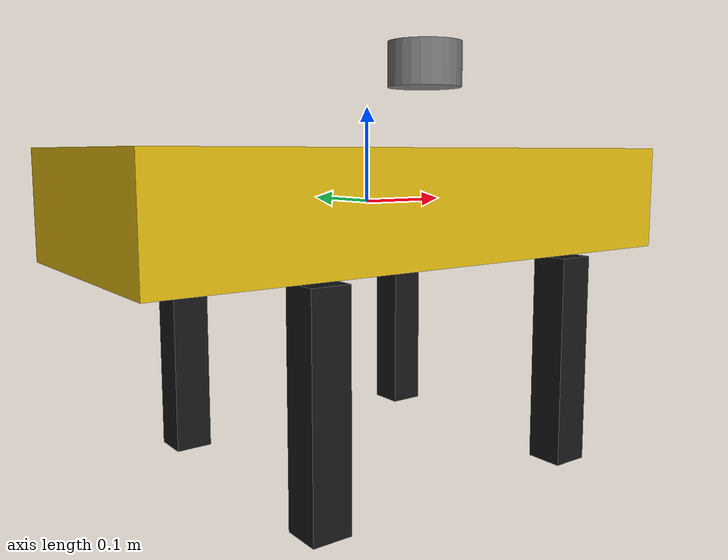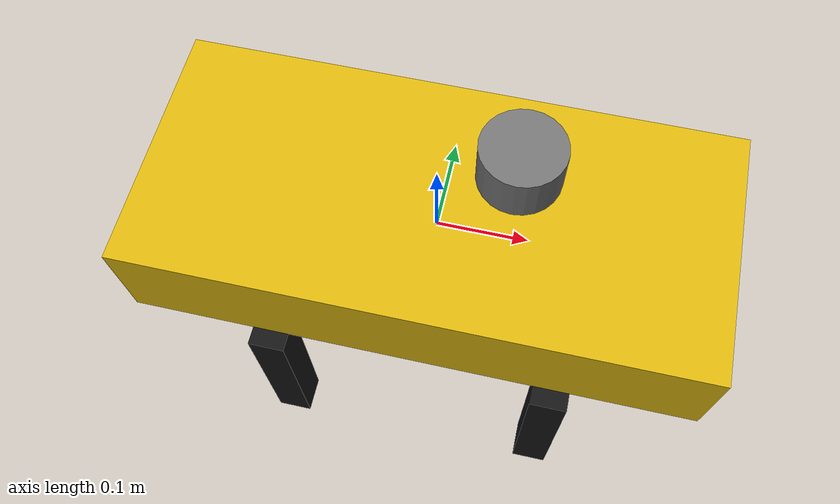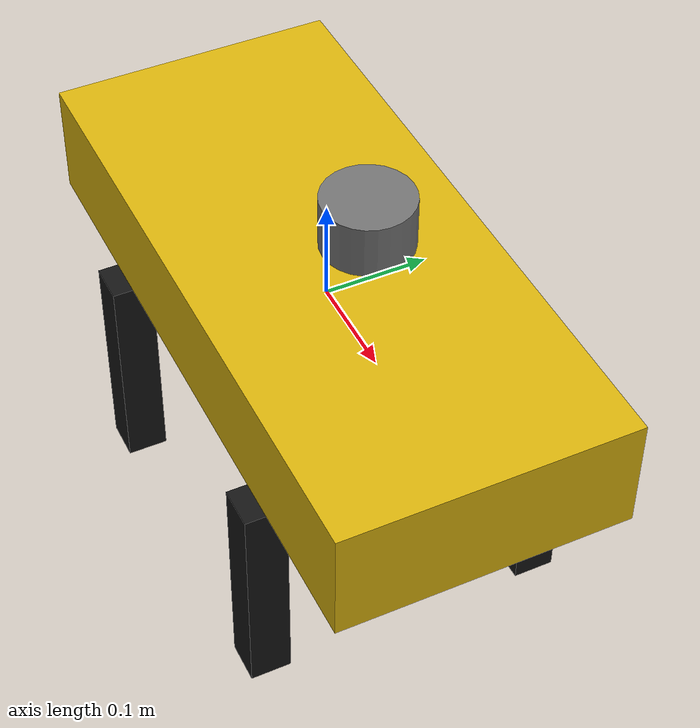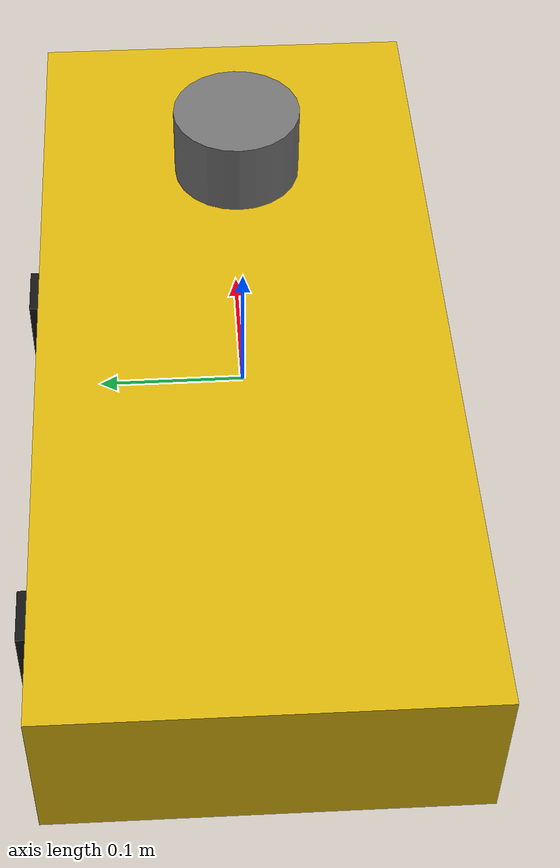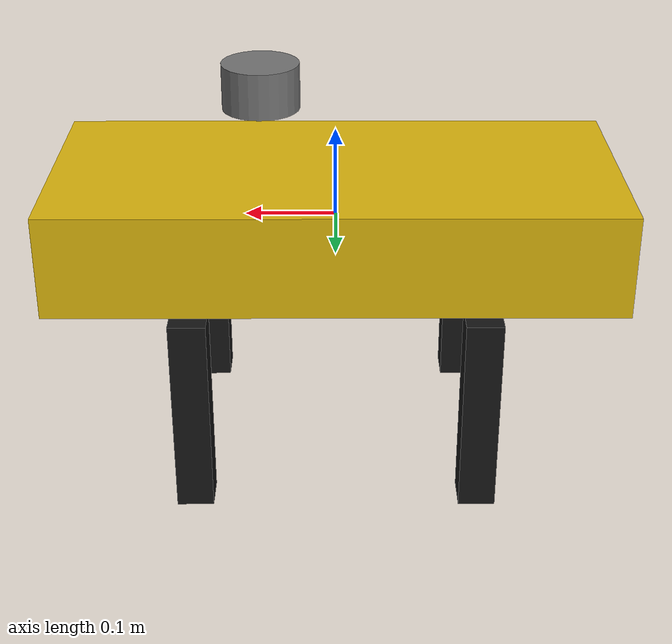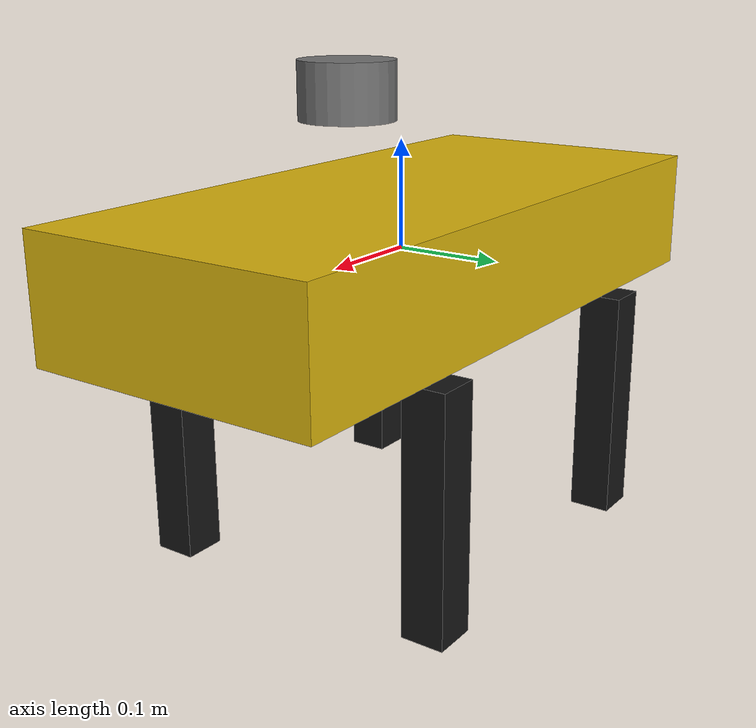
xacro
<?xml version="1.0"?>
<robot name="go2" xmlns:xacro="http://ros.org/wiki/xacro">

  <xacro:property name="body_l" value="0.62"/>
  <xacro:property name="body_w" value="0.28"/>
  <xacro:property name="body_h" value="0.114"/>
  <xacro:property name="leg_w"  value="0.04"/>
  <xacro:property name="leg_h"  value="0.223"/>
  <xacro:property name="laser_h" value="0.05"/>

  <material name="go2_yellow"><color rgba="0.85 0.70 0.05 1.0"/></material>
  <material name="go2_black"><color rgba="0.08 0.08 0.08 1.0"/></material>
  <material name="go2_grey"><color rgba="0.45 0.45 0.45 1.0"/></material>

  <!-- ==================== body ==================== -->
  <link name="base_link">
    <visual>
      <origin xyz="0 0 0" rpy="0 0 0"/>
      <geometry><box size="${body_l} ${body_w} ${body_h}"/></geometry>
      <material name="go2_yellow"/>
    </visual>
    <collision>
      <origin xyz="0 0 0" rpy="0 0 0"/>
      <geometry><box size="${body_l} ${body_w} ${body_h}"/></geometry>
    </collision>
    <inertial>
      <origin xyz="0 0 0" rpy="0 0 0"/>
      <mass value="12.0"/>
      <inertia ixx="0.168" ixy="0" ixz="0" iyy="0.422" iyz="0" izz="0.517"/>
    </inertial>
  </link>

  <!-- ==================== legs (4×, visual only) ==================== -->
  <xacro:macro name="leg" params="name px py">
    <link name="${name}_link">
      <visual>
        <origin xyz="0 0 ${-leg_h/2}" rpy="0 0 0"/>
        <geometry><box size="${leg_w} ${leg_w} ${leg_h}"/></geometry>
        <material name="go2_black"/>
      </visual>
      <inertial>
        <mass value="0.2"/>
        <inertia ixx="0.0002" ixy="0" ixz="0" iyy="0.0002" iyz="0" izz="0.0002"/>
      </inertial>
    </link>
    <joint name="${name}_joint" type="fixed">
      <parent link="base_link"/>
      <child link="${name}_link"/>
      <origin xyz="${px} ${py} ${-body_h/2}" rpy="0 0 0"/>
    </joint>
  </xacro:macro>

  <xacro:leg name="fl_leg" px=" 0.155" py=" 0.14"/>
  <xacro:leg name="fr_leg" px=" 0.155" py="-0.14"/>
  <xacro:leg name="rl_leg" px="-0.155" py=" 0.14"/>
  <xacro:leg name="rr_leg" px="-0.155" py="-0.14"/>

  <!-- ==================== LiDAR frame ==================== -->
  <link name="laser_frame">
    <visual>
      <origin xyz="0 0 0" rpy="0 0 0"/>
      <geometry><cylinder radius="0.042" length="${laser_h}"/></geometry>
      <material name="go2_grey"/>
    </visual>
    <inertial>
      <mass value="0.1"/>
      <inertia ixx="0.0001" ixy="0" ixz="0" iyy="0.0001" iyz="0" izz="0.0001"/>
    </inertial>
  </link>

  <joint name="laser_joint" type="fixed">
    <parent link="base_link"/>
    <child link="laser_frame"/>
    <!-- Same mounting position as simulation -->
    <origin xyz="0.08 0 0.15" rpy="0 0 0"/>
  </joint>

</robot>
